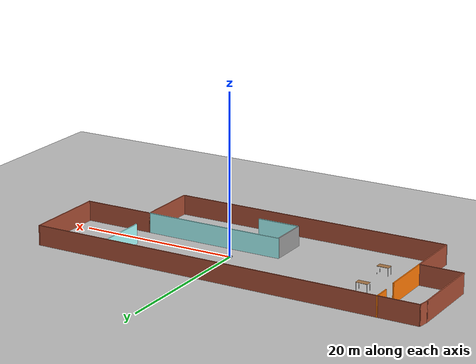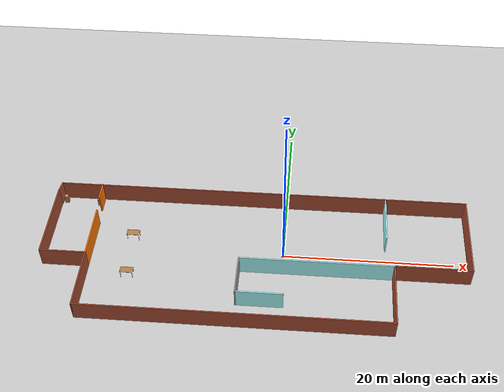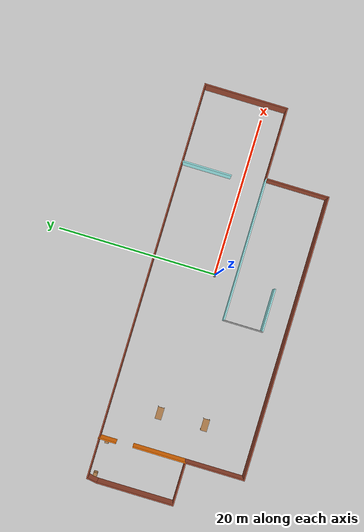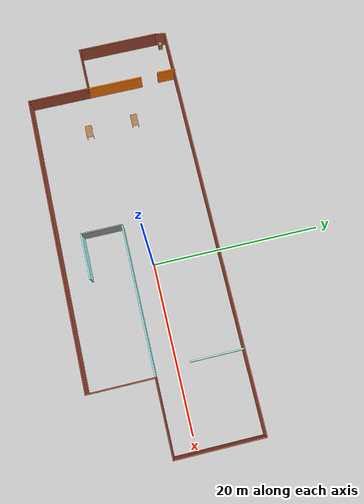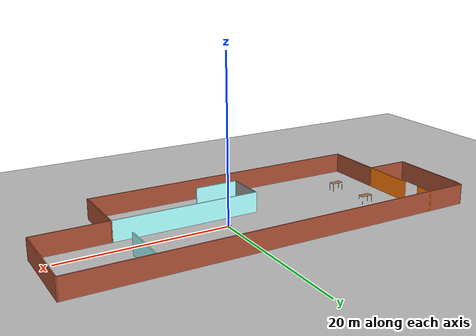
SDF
<sdf version="1.7">
 <world name="default">
  <light name="sun" type="directional">
   <pose>0 0 10 0 -0 0</pose>
   <diffuse>0.8 0.8 0.8 1</diffuse>
   <specular>0.2 0.2 0.2 1</specular>
   <attenuation>
    <range>1000</range>
    <constant>0.9</constant>
    <linear>0.01</linear>
    <quadratic>0.001</quadratic>
   </attenuation>
   <direction>-0.5 0.1 -0.9</direction>
   <spot><inner_angle>0</inner_angle><outer_angle>0</outer_angle><falloff>0</falloff></spot>
  </light>
  <model name="ground_plane">
   <static>1</static>
   <link name="link">
    <collision name="collision">
     <geometry><plane><normal>0 0 1</normal><size>100 100</size></plane></geometry>
     <surface>
      <contact><collide_bitmask>65535</collide_bitmask></contact>
      <friction><ode><mu>100</mu><mu2>50</mu2></ode></friction>
     </surface>
    </collision>
    <visual name="visual">
     <cast_shadows>0</cast_shadows>
     <geometry><plane><normal>0 0 1</normal><size>100 100</size></plane></geometry>
     <material>
      <script><uri>file://media/materials/scripts/gazebo.material</uri><name>Gazebo/Grey</name></script>
     </material>
    </visual>
   </link>
  </model>
  <gravity>0 0 -9.8</gravity>
  <magnetic_field>6e-06 2.3e-05 -4.2e-05</magnetic_field>
  <atmosphere type="adiabatic"/>
  <physics type="ode">
   <max_step_size>0.001</max_step_size>
   <real_time_factor>1</real_time_factor>
   <real_time_update_rate>1000</real_time_update_rate>
  </physics>
  <scene><ambient>0.4 0.4 0.4 1</ambient><background>0.7 0.7 0.7 1</background><shadows>1</shadows></scene>
  <spherical_coordinates>
   <surface_model>EARTH_WGS84</surface_model>
   <latitude_deg>0</latitude_deg>
   <longitude_deg>0</longitude_deg>
   <elevation>0</elevation>
   <heading_deg>0</heading_deg>
  </spherical_coordinates>
  <model name="myhouse">
   <pose>-3.2393 -1.27261 0 0 -0 0</pose>
   <link name="Wall_0">
    <collision name="Wall_0_Collision">
     <geometry><box><size>9.75 0.15 2.5</size></box></geometry>
     <pose>0 0 1.25 0 -0 0</pose>
    </collision>
    <visual name="Wall_0_Visual">
     <pose>0 0 1.25 0 -0 0</pose>
     <geometry><box><size>9.75 0.15 2.5</size></box></geometry>
     <material>
      <script><uri>file://media/materials/scripts/gazebo.material</uri><name>Gazebo/Bricks</name></script>
      <ambient>1 1 1 1</ambient>
     </material>
     <meta><layer>0</layer></meta>
    </visual>
    <pose>-24.8945 3.02404 0 0 -0 -1.5708</pose>
   </link>
   <link name="Wall_1">
    <collision name="Wall_1_Collision">
     <geometry><box><size>5.5 0.15 2.5</size></box></geometry>
     <pose>0 0 1.25 0 -0 0</pose>
    </collision>
    <visual name="Wall_1_Visual">
     <pose>0 0 1.25 0 -0 0</pose>
     <geometry><box><size>5.5 0.15 2.5</size></box></geometry>
     <material>
      <script><uri>file://media/materials/scripts/gazebo.material</uri><name>Gazebo/Bricks</name></script>
      <ambient>1 1 1 1</ambient>
     </material>
     <meta><layer>0</layer></meta>
    </visual>
    <pose>-22.2195 -1.77597 0 0 -0 0</pose>
   </link>
   <link name="Wall_11">
    <collision name="Wall_11_Collision">
     <geometry><box><size>6.75 0.15 2.5</size></box></geometry>
     <pose>0 0 1.25 0 -0 0</pose>
    </collision>
    <visual name="Wall_11_Visual">
     <pose>0 0 1.25 0 -0 0</pose>
     <geometry><box><size>6.75 0.15 2.5</size></box></geometry>
     <material>
      <script><uri>file://media/materials/scripts/gazebo.material</uri><name>Gazebo/Grey</name></script>
      <ambient>0.996078 0.47451 0.0196078 1</ambient>
     </material>
     <meta><layer>0</layer></meta>
    </visual>
    <pose>-19.5445 1.52404 0 0 -0 1.5708</pose>
   </link>
   <link name="Wall_14">
    <collision name="Wall_14_Collision">
     <geometry><box><size>2.25 0.15 2.5</size></box></geometry>
     <pose>0 0 1.25 0 -0 0</pose>
    </collision>
    <visual name="Wall_14_Visual">
     <pose>0 0 1.25 0 -0 0</pose>
     <geometry><box><size>2.25 0.15 2.5</size></box></geometry>
     <material>
      <script><uri>file://media/materials/scripts/gazebo.material</uri><name>Gazebo/Grey</name></script>
      <ambient>0.996078 0.47451 0.0196078 1</ambient>
     </material>
     <meta><layer>0</layer></meta>
    </visual>
    <pose>-19.6868 8.07597 0 0 -0 -1.5708</pose>
   </link>
   <link name="Wall_16">
    <collision name="Wall_16_Collision">
     <geometry><box><size>18 0.15 2.5</size></box></geometry>
     <pose>0 0 1.25 0 -0 0</pose>
    </collision>
    <visual name="Wall_16_Visual">
     <pose>0 0 1.25 0 -0 0</pose>
     <geometry><box><size>18 0.15 2.5</size></box></geometry>
     <material>
      <script><uri>file://media/materials/scripts/gazebo.material</uri><name>Gazebo/Grey</name></script>
      <ambient>0.666667 1 1 1</ambient>
     </material>
     <meta><layer>0</layer></meta>
    </visual>
    <pose>7.13045 -1.27597 0 0 -0 3.14159</pose>
   </link>
   <link name="Wall_17">
    <collision name="Wall_17_Collision">
     <geometry><box><size>5 0.15 2.5</size></box></geometry>
     <pose>0 0 1.25 0 -0 0</pose>
    </collision>
    <visual name="Wall_17_Visual">
     <pose>0 0 1.25 0 -0 0</pose>
     <geometry><box><size>5 0.15 2.5</size></box></geometry>
     <material>
      <script><uri>file://media/materials/scripts/gazebo.material</uri><name>Gazebo/Grey</name></script>
      <ambient>1 1 1 1</ambient>
     </material>
     <meta><layer>0</layer></meta>
    </visual>
    <pose>-1.79455 -3.70097 0 0 -0 -1.5708</pose>
   </link>
   <link name="Wall_18">
    <collision name="Wall_18_Collision">
     <geometry><box><size>5.5 0.15 2.5</size></box></geometry>
     <pose>0 0 1.25 0 -0 0</pose>
    </collision>
    <visual name="Wall_18_Visual">
     <pose>0 0 1.25 0 -0 0</pose>
     <geometry><box><size>5.5 0.15 2.5</size></box></geometry>
     <material>
      <script><uri>file://media/materials/scripts/gazebo.material</uri><name>Gazebo/Grey</name></script>
      <ambient>0.666667 1 1 1</ambient>
     </material>
     <meta><layer>0</layer></meta>
    </visual>
    <pose>0.880453 -6.12596 0 0 -0 0</pose>
   </link>
   <link name="Wall_2">
    <collision name="Wall_2_Collision">
     <geometry><box><size>7.5 0.15 2.5</size></box></geometry>
     <pose>0 0 1.25 0 -0 0</pose>
    </collision>
    <visual name="Wall_2_Visual">
     <pose>0 0 1.25 0 -0 0</pose>
     <geometry><box><size>7.5 0.15 2.5</size></box></geometry>
     <material>
      <script><uri>file://media/materials/scripts/gazebo.material</uri><name>Gazebo/Bricks</name></script>
      <ambient>1 1 1 1</ambient>
     </material>
     <meta><layer>0</layer></meta>
    </visual>
    <pose>-19.5445 -5.45097 0 0 -0 -1.5708</pose>
   </link>
   <link name="Wall_20">
    <collision name="Wall_20_Collision">
     <geometry><box><size>6.25 0.15 2.5</size></box></geometry>
     <pose>0 0 1.25 0 -0 0</pose>
    </collision>
    <visual name="Wall_20_Visual">
     <pose>0 0 1.25 0 -0 0</pose>
     <geometry><box><size>6.25 0.15 2.5</size></box></geometry>
     <material>
      <script><uri>file://media/materials/scripts/gazebo.material</uri><name>Gazebo/Grey</name></script>
      <ambient>0.666667 1 1 1</ambient>
     </material>
     <meta><layer>0</layer></meta>
    </visual>
    <pose>15.2212 5.99459 0 0 -0 -1.5708</pose>
   </link>
   <link name="Wall_3">
    <collision name="Wall_3_Collision">
     <geometry><box><size>35.75 0.15 2.5</size></box></geometry>
     <pose>0 0 1.25 0 -0 0</pose>
    </collision>
    <visual name="Wall_3_Visual">
     <pose>0 0 1.25 0 -0 0</pose>
     <geometry><box><size>35.75 0.15 2.5</size></box></geometry>
     <material>
      <script><uri>file://media/materials/scripts/gazebo.material</uri><name>Gazebo/Bricks</name></script>
      <ambient>1 1 1 1</ambient>
     </material>
     <meta><layer>0</layer></meta>
    </visual>
    <pose>-1.74455 -9.12597 0 0 -0 0</pose>
   </link>
   <link name="Wall_5">
    <collision name="Wall_5_Collision">
     <geometry><box><size>8 0.15 2.5</size></box></geometry>
     <pose>0 0 1.25 0 -0 0</pose>
    </collision>
    <visual name="Wall_5_Visual">
     <pose>0 0 1.25 0 -0 0</pose>
     <geometry><box><size>8 0.15 2.5</size></box></geometry>
     <material>
      <script><uri>file://media/materials/scripts/gazebo.material</uri><name>Gazebo/Bricks</name></script>
      <ambient>1 1 1 1</ambient>
     </material>
     <meta><layer>0</layer></meta>
    </visual>
    <pose>16.0555 -5.20097 0 0 -0 1.5708</pose>
   </link>
   <link name="Wall_6">
    <collision name="Wall_6_Collision">
     <geometry><box><size>9 0.15 2.5</size></box></geometry>
     <pose>0 0 1.25 0 -0 0</pose>
    </collision>
    <visual name="Wall_6_Visual">
     <pose>0 0 1.25 0 -0 0</pose>
     <geometry><box><size>9 0.15 2.5</size></box></geometry>
     <material>
      <script><uri>file://media/materials/scripts/gazebo.material</uri><name>Gazebo/Bricks</name></script>
      <ambient>1 1 1 1</ambient>
     </material>
     <meta><layer>0</layer></meta>
    </visual>
    <pose>20.4805 -1.27597 0 0 -0 0</pose>
   </link>
   <link name="Wall_7">
    <collision name="Wall_7_Collision">
     <geometry><box><size>10.5 0.15 2.5</size></box></geometry>
     <pose>0 0 1.25 0 -0 0</pose>
    </collision>
    <visual name="Wall_7_Visual">
     <pose>0 0 1.25 0 -0 0</pose>
     <geometry><box><size>10.5 0.15 2.5</size></box></geometry>
     <material>
      <script><uri>file://media/materials/scripts/gazebo.material</uri><name>Gazebo/Bricks</name></script>
      <ambient>1 1 1 1</ambient>
     </material>
     <meta><layer>0</layer></meta>
    </visual>
    <pose>24.9055 3.89904 0 0 -0 1.5708</pose>
   </link>
   <link name="Wall_8">
    <collision name="Wall_8_Collision">
     <geometry><box><size>49.75 0.15 2.5</size></box></geometry>
     <pose>0 0 1.25 0 -0 0</pose>
    </collision>
    <visual name="Wall_8_Visual">
     <pose>0 0 1.25 0 -0 0</pose>
     <geometry><box><size>49.75 0.15 2.5</size></box></geometry>
     <material>
      <script><uri>file://media/materials/scripts/gazebo.material</uri><name>Gazebo/Bricks</name></script>
      <ambient>1 1 1 1</ambient>
     </material>
     <meta><layer>0</layer></meta>
    </visual>
    <pose>0.105453 9.07404 0 0 -0 3.14159</pose>
   </link>
   <link name="Wall_9">
    <collision name="Wall_9_Collision">
     <geometry><box><size>1.4159 0.15 2.5</size></box></geometry>
     <pose>0 0 1.25 0 -0 0</pose>
    </collision>
    <visual name="Wall_9_Visual">
     <pose>0 0 1.25 0 -0 0</pose>
     <geometry><box><size>1.4159 0.15 2.5</size></box></geometry>
     <material>
      <script><uri>file://media/materials/scripts/gazebo.material</uri><name>Gazebo/Bricks</name></script>
      <ambient>1 1 1 1</ambient>
     </material>
     <meta><layer>0</layer></meta>
    </visual>
    <pose>-24.7945 8.44904 0 0 -0 -1.72945</pose>
   </link>
   <static>1</static>
  </model>
  <model name="cabinet">
   <static>1</static>
   <link name="cabinet_bottom_plate">
    <inertial>
     <pose>0 0 -1 0 -0 0</pose>
     <inertia><ixx>2.05</ixx><ixy>0</ixy><ixz>0</ixz><iyy>2.05</iyy><iyz>0</iyz><izz>2.05</izz></inertia>
     <mass>25</mass>
    </inertial>
    <collision name="cabinet_bottom_plate_geom">
     <pose>0 0 0.01 0 -0 0</pose>
     <geometry><box><size>0.45 0.45 0.02</size></box></geometry>
    </collision>
    <visual name="cabinet_bottom_plate_geom_visual">
     <pose>0 0 0.01 0 -0 0</pose>
     <geometry><box><size>0.45 0.45 0.02</size></box></geometry>
     <material>
      <script><uri>file://media/materials/scripts/gazebo.material</uri><name>Gazebo/Wood</name></script>
     </material>
    </visual>
    <collision name="cabinet_bottom_plate_geom_cabinet_back_plate">
     <pose>0.235 0 0.51 0 -0 0</pose>
     <geometry><box><size>0.02 0.45 1.02</size></box></geometry>
    </collision>
    <visual name="cabinet_bottom_plate_geom_cabinet_back_plate_visual">
     <pose>0.235 0 0.51 0 -0 0</pose>
     <geometry><box><size>0.02 0.45 1.02</size></box></geometry>
     <material>
      <script><uri>file://media/materials/scripts/gazebo.material</uri><name>Gazebo/Wood</name></script>
     </material>
    </visual>
    <collision name="cabinet_bottom_plate_geom_cabinet_left_plate">
     <pose>0 0.235 0.51 0 -0 0</pose>
     <geometry><box><size>0.45 0.02 1.02</size></box></geometry>
    </collision>
    <visual name="cabinet_bottom_plate_geom_cabinet_left_plate_visual">
     <pose>0 0.235 0.51 0 -0 0</pose>
     <geometry><box><size>0.45 0.02 1.02</size></box></geometry>
     <material>
      <script><uri>file://media/materials/scripts/gazebo.material</uri><name>Gazebo/Wood</name></script>
     </material>
    </visual>
    <collision name="cabinet_bottom_plate_geom_cabinet_middle_plate">
     <pose>0 0 0.51 0 -0 0</pose>
     <geometry><box><size>0.45 0.45 0.02</size></box></geometry>
    </collision>
    <visual name="cabinet_bottom_plate_geom_cabinet_middle_plate_visual">
     <pose>0 0 0.51 0 -0 0</pose>
     <geometry><box><size>0.45 0.45 0.02</size></box></geometry>
     <material>
      <script><uri>file://media/materials/scripts/gazebo.material</uri><name>Gazebo/Wood</name></script>
     </material>
    </visual>
    <collision name="cabinet_bottom_plate_geom_cabinet_right_plate">
     <pose>0 -0.235 0.51 0 -0 0</pose>
     <geometry><box><size>0.45 0.02 1.02</size></box></geometry>
    </collision>
    <visual name="cabinet_bottom_plate_geom_cabinet_right_plate_visual">
     <pose>0 -0.235 0.51 0 -0 0</pose>
     <geometry><box><size>0.45 0.02 1.02</size></box></geometry>
     <material>
      <script><uri>file://media/materials/scripts/gazebo.material</uri><name>Gazebo/Wood</name></script>
     </material>
    </visual>
    <collision name="cabinet_bottom_plate_geom_cabinet_top_plate">
     <pose>0 0 1.01 0 -0 0</pose>
     <geometry><box><size>0.45 0.45 0.02</size></box></geometry>
    </collision>
    <visual name="cabinet_bottom_plate_geom_cabinet_top_plate_visual">
     <pose>0 0 1.01 0 -0 0</pose>
     <geometry><box><size>0.45 0.45 0.02</size></box></geometry>
     <material>
      <script><uri>file://media/materials/scripts/gazebo.material</uri><name>Gazebo/Wood</name></script>
     </material>
    </visual>
   </link>
   <pose>-27.5533 7.04256 0 0 -0 0</pose>
  </model>
  <model name="cabinet_0">
   <static>1</static>
   <link name="cabinet_bottom_plate">
    <inertial>
     <pose>0 0 -1 0 -0 0</pose>
     <inertia><ixx>2.05</ixx><ixy>0</ixy><ixz>0</ixz><iyy>2.05</iyy><iyz>0</iyz><izz>2.05</izz></inertia>
     <mass>25</mass>
    </inertial>
    <collision name="cabinet_bottom_plate_geom">
     <pose>0 0 0.01 0 -0 0</pose>
     <geometry><box><size>0.45 0.45 0.02</size></box></geometry>
    </collision>
    <visual name="cabinet_bottom_plate_geom_visual">
     <pose>0 0 0.01 0 -0 0</pose>
     <geometry><box><size>0.45 0.45 0.02</size></box></geometry>
     <material>
      <script><uri>file://media/materials/scripts/gazebo.material</uri><name>Gazebo/Wood</name></script>
     </material>
    </visual>
    <collision name="cabinet_bottom_plate_geom_cabinet_back_plate">
     <pose>0.235 0 0.51 0 -0 0</pose>
     <geometry><box><size>0.02 0.45 1.02</size></box></geometry>
    </collision>
    <visual name="cabinet_bottom_plate_geom_cabinet_back_plate_visual">
     <pose>0.235 0 0.51 0 -0 0</pose>
     <geometry><box><size>0.02 0.45 1.02</size></box></geometry>
     <material>
      <script><uri>file://media/materials/scripts/gazebo.material</uri><name>Gazebo/Wood</name></script>
     </material>
    </visual>
    <collision name="cabinet_bottom_plate_geom_cabinet_left_plate">
     <pose>0 0.235 0.51 0 -0 0</pose>
     <geometry><box><size>0.45 0.02 1.02</size></box></geometry>
    </collision>
    <visual name="cabinet_bottom_plate_geom_cabinet_left_plate_visual">
     <pose>0 0.235 0.51 0 -0 0</pose>
     <geometry><box><size>0.45 0.02 1.02</size></box></geometry>
     <material>
      <script><uri>file://media/materials/scripts/gazebo.material</uri><name>Gazebo/Wood</name></script>
     </material>
    </visual>
    <collision name="cabinet_bottom_plate_geom_cabinet_middle_plate">
     <pose>0 0 0.51 0 -0 0</pose>
     <geometry><box><size>0.45 0.45 0.02</size></box></geometry>
    </collision>
    <visual name="cabinet_bottom_plate_geom_cabinet_middle_plate_visual">
     <pose>0 0 0.51 0 -0 0</pose>
     <geometry><box><size>0.45 0.45 0.02</size></box></geometry>
     <material>
      <script><uri>file://media/materials/scripts/gazebo.material</uri><name>Gazebo/Wood</name></script>
     </material>
    </visual>
    <collision name="cabinet_bottom_plate_geom_cabinet_right_plate">
     <pose>0 -0.235 0.51 0 -0 0</pose>
     <geometry><box><size>0.45 0.02 1.02</size></box></geometry>
    </collision>
    <visual name="cabinet_bottom_plate_geom_cabinet_right_plate_visual">
     <pose>0 -0.235 0.51 0 -0 0</pose>
     <geometry><box><size>0.45 0.02 1.02</size></box></geometry>
     <material>
      <script><uri>file://media/materials/scripts/gazebo.material</uri><name>Gazebo/Wood</name></script>
     </material>
    </visual>
    <collision name="cabinet_bottom_plate_geom_cabinet_top_plate">
     <pose>0 0 1.01 0 -0 0</pose>
     <geometry><box><size>0.45 0.45 0.02</size></box></geometry>
    </collision>
    <visual name="cabinet_bottom_plate_geom_cabinet_top_plate_visual">
     <pose>0 0 1.01 0 -0 0</pose>
     <geometry><box><size>0.45 0.45 0.02</size></box></geometry>
     <material>
      <script><uri>file://media/materials/scripts/gazebo.material</uri><name>Gazebo/Wood</name></script>
     </material>
    </visual>
   </link>
   <pose>-23.3077 6.83005 0 0 -0 0</pose>
  </model>
  <model name="table">
   <static>1</static>
   <link name="link">
    <collision name="surface">
     <pose>0 0 1 0 -0 0</pose>
     <geometry><box><size>1.5 0.8 0.03</size></box></geometry>
     <surface><friction><ode><mu>0.6</mu><mu2>0.6</mu2></ode></friction></surface>
    </collision>
    <visual name="visual1">
     <pose>0 0 1 0 -0 0</pose>
     <geometry><box><size>1.5 0.8 0.03</size></box></geometry>
     <material>
      <script><uri>file://media/materials/scripts/gazebo.material</uri><name>Gazebo/Wood</name></script>
     </material>
    </visual>
    <collision name="front_left_leg">
     <pose>0.68 0.38 0.5 0 -0 0</pose>
     <geometry><cylinder><radius>0.02</radius><length>1</length></cylinder></geometry>
    </collision>
    <visual name="front_left_leg">
     <pose>0.68 0.38 0.5 0 -0 0</pose>
     <geometry><cylinder><radius>0.02</radius><length>1</length></cylinder></geometry>
     <material>
      <script><uri>file://media/materials/scripts/gazebo.material</uri><name>Gazebo/Grey</name></script>
     </material>
    </visual>
    <collision name="front_right_leg">
     <pose>0.68 -0.38 0.5 0 -0 0</pose>
     <geometry><cylinder><radius>0.02</radius><length>1</length></cylinder></geometry>
    </collision>
    <visual name="front_right_leg">
     <pose>0.68 -0.38 0.5 0 -0 0</pose>
     <geometry><cylinder><radius>0.02</radius><length>1</length></cylinder></geometry>
     <material>
      <script><uri>file://media/materials/scripts/gazebo.material</uri><name>Gazebo/Grey</name></script>
     </material>
    </visual>
    <collision name="back_right_leg">
     <pose>-0.68 -0.38 0.5 0 -0 0</pose>
     <geometry><cylinder><radius>0.02</radius><length>1</length></cylinder></geometry>
    </collision>
    <visual name="back_right_leg">
     <pose>-0.68 -0.38 0.5 0 -0 0</pose>
     <geometry><cylinder><radius>0.02</radius><length>1</length></cylinder></geometry>
     <material>
      <script><uri>file://media/materials/scripts/gazebo.material</uri><name>Gazebo/Grey</name></script>
     </material>
    </visual>
    <collision name="back_left_leg">
     <pose>-0.68 0.38 0.5 0 -0 0</pose>
     <geometry><cylinder><radius>0.02</radius><length>1</length></cylinder></geometry>
    </collision>
    <visual name="back_left_leg">
     <pose>-0.68 0.38 0.5 0 -0 0</pose>
     <geometry><cylinder><radius>0.02</radius><length>1</length></cylinder></geometry>
     <material>
      <script><uri>file://media/materials/scripts/gazebo.material</uri><name>Gazebo/Grey</name></script>
     </material>
    </visual>
   </link>
   <pose>-18.1522 1.64342 0 0 -0 0</pose>
  </model>
  <model name="table_0">
   <static>1</static>
   <link name="link">
    <collision name="surface">
     <pose>0 0 1 0 -0 0</pose>
     <geometry><box><size>1.5 0.8 0.03</size></box></geometry>
     <surface><friction><ode><mu>0.6</mu><mu2>0.6</mu2></ode></friction></surface>
    </collision>
    <visual name="visual1">
     <pose>0 0 1 0 -0 0</pose>
     <geometry><box><size>1.5 0.8 0.03</size></box></geometry>
     <material>
      <script><uri>file://media/materials/scripts/gazebo.material</uri><name>Gazebo/Wood</name></script>
     </material>
    </visual>
    <collision name="front_left_leg">
     <pose>0.68 0.38 0.5 0 -0 0</pose>
     <geometry><cylinder><radius>0.02</radius><length>1</length></cylinder></geometry>
    </collision>
    <visual name="front_left_leg">
     <pose>0.68 0.38 0.5 0 -0 0</pose>
     <geometry><cylinder><radius>0.02</radius><length>1</length></cylinder></geometry>
     <material>
      <script><uri>file://media/materials/scripts/gazebo.material</uri><name>Gazebo/Grey</name></script>
     </material>
    </visual>
    <collision name="front_right_leg">
     <pose>0.68 -0.38 0.5 0 -0 0</pose>
     <geometry><cylinder><radius>0.02</radius><length>1</length></cylinder></geometry>
    </collision>
    <visual name="front_right_leg">
     <pose>0.68 -0.38 0.5 0 -0 0</pose>
     <geometry><cylinder><radius>0.02</radius><length>1</length></cylinder></geometry>
     <material>
      <script><uri>file://media/materials/scripts/gazebo.material</uri><name>Gazebo/Grey</name></script>
     </material>
    </visual>
    <collision name="back_right_leg">
     <pose>-0.68 -0.38 0.5 0 -0 0</pose>
     <geometry><cylinder><radius>0.02</radius><length>1</length></cylinder></geometry>
    </collision>
    <visual name="back_right_leg">
     <pose>-0.68 -0.38 0.5 0 -0 0</pose>
     <geometry><cylinder><radius>0.02</radius><length>1</length></cylinder></geometry>
     <material>
      <script><uri>file://media/materials/scripts/gazebo.material</uri><name>Gazebo/Grey</name></script>
     </material>
    </visual>
    <collision name="back_left_leg">
     <pose>-0.68 0.38 0.5 0 -0 0</pose>
     <geometry><cylinder><radius>0.02</radius><length>1</length></cylinder></geometry>
    </collision>
    <visual name="back_left_leg">
     <pose>-0.68 0.38 0.5 0 -0 0</pose>
     <geometry><cylinder><radius>0.02</radius><length>1</length></cylinder></geometry>
     <material>
      <script><uri>file://media/materials/scripts/gazebo.material</uri><name>Gazebo/Grey</name></script>
     </material>
    </visual>
   </link>
   <pose>-17.9416 -4.09257 0 0 -0 0</pose>
  </model>
  <audio><device>default</device></audio>
  <model name="rusty">
   <link name="base_link">
    <inertial>
     <pose>0.000187 1.7e-05 0.134183 0 -0 0</pose>
     <mass>40.0471</mass>
     <inertia>
      <ixx>0.396803</ixx>
      <ixy>-0.000160667</ixy>
      <ixz>1.07487e-05</ixz>
      <iyy>0.900506</iyy>
      <iyz>3.01439e-06</iyz>
      <izz>1.12391</izz>
     </inertia>
    </inertial>
    <collision name="base_link_collision">
     <geometry>
      <mesh>
       <scale>0.001 0.001 0.001</scale>
       <uri>file:///home/siddarth/ros2ws/install/rusty_description/share/rusty_description/meshes/base_link.stl</uri>
      </mesh>
     </geometry>
     <surface><friction><ode><mu>0.2</mu><mu2>0.2</mu2></ode></friction></surface>
    </collision>
    <collision name="base_link_fixed_joint_lump__Holder_1_collision_1">
     <geometry>
      <mesh>
       <scale>0.001 0.001 0.001</scale>
       <uri>file:///home/siddarth/ros2ws/install/rusty_description/share/rusty_description/meshes/Holder_1.stl</uri>
      </mesh>
     </geometry>
     <surface><friction><ode><mu>0.2</mu><mu2>0.2</mu2></ode></friction></surface>
    </collision>
    <collision name="base_link_fixed_joint_lump__Camera_1_collision_2">
     <geometry>
      <mesh>
       <scale>0.001 0.001 0.001</scale>
       <uri>file:///home/siddarth/ros2ws/install/rusty_description/share/rusty_description/meshes/Camera_1.stl</uri>
      </mesh>
     </geometry>
     <surface><friction><ode><mu>0.2</mu><mu2>0.2</mu2></ode></friction></surface>
    </collision>
    <collision name="base_link_fixed_joint_lump__Lidar_1_collision_3">
     <geometry>
      <mesh>
       <scale>0.001 0.001 0.001</scale>
       <uri>file:///home/siddarth/ros2ws/install/rusty_description/share/rusty_description/meshes/Lidar_1.stl</uri>
      </mesh>
     </geometry>
     <surface><friction><ode><mu>0.2</mu><mu2>0.2</mu2></ode></friction></surface>
    </collision>
    <visual name="base_link_visual">
     <geometry>
      <mesh>
       <scale>0.001 0.001 0.001</scale>
       <uri>file:///home/siddarth/ros2ws/install/rusty_description/share/rusty_description/meshes/base_link.stl</uri>
      </mesh>
     </geometry>
     <material>
      <script><name>Gazebo/Silver</name><uri>file://media/materials/scripts/gazebo.material</uri></script>
     </material>
    </visual>
    <visual name="base_link_fixed_joint_lump__Holder_1_visual_1">
     <geometry>
      <mesh>
       <scale>0.001 0.001 0.001</scale>
       <uri>file:///home/siddarth/ros2ws/install/rusty_description/share/rusty_description/meshes/Holder_1.stl</uri>
      </mesh>
     </geometry>
     <material>
      <script><name>Gazebo/Black</name><uri>file://media/materials/scripts/gazebo.material</uri></script>
     </material>
    </visual>
    <visual name="base_link_fixed_joint_lump__Camera_1_visual_2">
     <geometry>
      <mesh>
       <scale>0.001 0.001 0.001</scale>
       <uri>file:///home/siddarth/ros2ws/install/rusty_description/share/rusty_description/meshes/Camera_1.stl</uri>
      </mesh>
     </geometry>
     <material>
      <script><name>Gazebo/Red</name><uri>file://media/materials/scripts/gazebo.material</uri></script>
     </material>
    </visual>
    <visual name="base_link_fixed_joint_lump__Lidar_1_visual_3">
     <geometry>
      <mesh>
       <scale>0.001 0.001 0.001</scale>
       <uri>file:///home/siddarth/ros2ws/install/rusty_description/share/rusty_description/meshes/Lidar_1.stl</uri>
      </mesh>
     </geometry>
     <material>
      <script><name>Gazebo/Blue</name><uri>file://media/materials/scripts/gazebo.material</uri></script>
     </material>
    </visual>
    <self_collide>1</self_collide>
    <self_collide>1</self_collide>
    <self_collide>1</self_collide>
    <sensor name="camera" type="camera">
     <update_rate>30</update_rate>
     <camera name="head">
      <horizontal_fov>1.39626</horizontal_fov>
      <image><width>640</width><height>480</height><format>R8G8B8</format></image>
      <clip><near>0.02</near><far>300</far></clip>
      <noise><type>gaussian</type><mean>0</mean><stddev>0.007</stddev></noise>
     </camera>
     <plugin name="camera_controller" filename="libgazebo_ros_camera.so">
      <alwaysOn>1</alwaysOn>
      <updateRate>0.0</updateRate>
      <cameraName>camera</cameraName>
      <imageTopicName>image_raw</imageTopicName>
      <cameraInfoTopicName>camera_info</cameraInfoTopicName>
      <frameName>camera</frameName>
      <hackBaseline>0.07</hackBaseline>
      <distortionK1>0.0</distortionK1>
      <distortionK2>0.0</distortionK2>
      <distortionK3>0.0</distortionK3>
      <distortionT1>0.0</distortionT1>
      <distortionT2>0.0</distortionT2>
     </plugin>
     <pose>0.222588 0.012099 0.15 0 -0 0</pose>
    </sensor>
    <self_collide>1</self_collide>
    <sensor name="ydlidar" type="ray">
     <always_on>1</always_on>
     <visualize>0</visualize>
     <update_rate>10</update_rate>
     <ray>
      <scan>
       <horizontal>
        <samples>720</samples>
        <resolution>1</resolution>
        <min_angle>-1.57</min_angle>
        <max_angle>1.57</max_angle>
       </horizontal>
       <vertical><samples>1</samples><min_angle>0</min_angle><max_angle>0</max_angle></vertical>
      </scan>
      <range><min>0.05</min><max>20</max><resolution>0.015</resolution></range>
      <noise><type>gaussian</type><mean>0</mean><stddev>0.01</stddev></noise>
     </ray>
     <plugin name="scan" filename="libgazebo_ros_ray_sensor.so">
      <ros><remapping>~/out:=scan</remapping></ros>
      <output_type>sensor_msgs/LaserScan</output_type>
      <frame_name>Lidar_1</frame_name>
     </plugin>
     <pose>0.235 0 0.135 0 -0 0</pose>
    </sensor>
   </link>
   <joint name="LW1" type="revolute">
    <pose relative_to="base_link">0.095 0.16 0.05 0 -0 0</pose>
    <parent>base_link</parent>
    <child>LW1_1</child>
    <axis>
     <xyz>0 1 0</xyz>
     <limit><lower>-1e+16</lower><upper>1e+16</upper></limit>
     <dynamics><spring_reference>0</spring_reference><spring_stiffness>0</spring_stiffness></dynamics>
    </axis>
   </joint>
   <link name="LW1_1">
    <pose relative_to="LW1">0 0 0 0 -0 0</pose>
    <inertial>
     <pose>0 0.0125 0 0 -0 0</pose>
     <mass>0.182605</mass>
     <inertia>
      <ixx>0.000124</ixx>
      <ixy>0</ixy>
      <ixz>0</ixz>
      <iyy>0.000228</iyy>
      <iyz>0</iyz>
      <izz>0.000124</izz>
     </inertia>
    </inertial>
    <collision name="LW1_1_collision">
     <pose>-0.095 -0.16 -0.05 0 -0 0</pose>
     <geometry>
      <mesh>
       <scale>0.001 0.001 0.001</scale>
       <uri>file:///home/siddarth/ros2ws/install/rusty_description/share/rusty_description/meshes/LW1_1.stl</uri>
      </mesh>
     </geometry>
     <surface><friction><ode><mu>0.2</mu><mu2>0.2</mu2></ode></friction></surface>
    </collision>
    <visual name="LW1_1_visual">
     <pose>-0.095 -0.16 -0.05 0 -0 0</pose>
     <geometry>
      <mesh>
       <scale>0.001 0.001 0.001</scale>
       <uri>file:///home/siddarth/ros2ws/install/rusty_description/share/rusty_description/meshes/LW1_1.stl</uri>
      </mesh>
     </geometry>
     <material>
      <script><name>Gazebo/Black</name><uri>file://media/materials/scripts/gazebo.material</uri></script>
     </material>
    </visual>
    <self_collide>1</self_collide>
   </link>
   <joint name="LW2" type="revolute">
    <pose relative_to="base_link">-0.095 0.16 0.05 0 -0 0</pose>
    <parent>base_link</parent>
    <child>LW2_1</child>
    <axis>
     <xyz>0 1 0</xyz>
     <limit><lower>-1e+16</lower><upper>1e+16</upper></limit>
     <dynamics><spring_reference>0</spring_reference><spring_stiffness>0</spring_stiffness></dynamics>
    </axis>
   </joint>
   <link name="LW2_1">
    <pose relative_to="LW2">0 0 0 0 -0 0</pose>
    <inertial>
     <pose>0 0.0125 0 0 -0 0</pose>
     <mass>0.182605</mass>
     <inertia>
      <ixx>0.000124</ixx>
      <ixy>0</ixy>
      <ixz>0</ixz>
      <iyy>0.000228</iyy>
      <iyz>0</iyz>
      <izz>0.000124</izz>
     </inertia>
    </inertial>
    <collision name="LW2_1_collision">
     <pose>0.095 -0.16 -0.05 0 -0 0</pose>
     <geometry>
      <mesh>
       <scale>0.001 0.001 0.001</scale>
       <uri>file:///home/siddarth/ros2ws/install/rusty_description/share/rusty_description/meshes/LW2_1.stl</uri>
      </mesh>
     </geometry>
     <surface><friction><ode><mu>0.2</mu><mu2>0.2</mu2></ode></friction></surface>
    </collision>
    <visual name="LW2_1_visual">
     <pose>0.095 -0.16 -0.05 0 -0 0</pose>
     <geometry>
      <mesh>
       <scale>0.001 0.001 0.001</scale>
       <uri>file:///home/siddarth/ros2ws/install/rusty_description/share/rusty_description/meshes/LW2_1.stl</uri>
      </mesh>
     </geometry>
     <material>
      <script><name>Gazebo/Black</name><uri>file://media/materials/scripts/gazebo.material</uri></script>
     </material>
    </visual>
    <self_collide>1</self_collide>
   </link>
   <joint name="RW1" type="revolute">
    <pose relative_to="base_link">0.095 -0.16 0.05 0 -0 0</pose>
    <parent>base_link</parent>
    <child>RW1_1</child>
    <axis>
     <xyz>0 1 0</xyz>
     <limit><lower>-1e+16</lower><upper>1e+16</upper></limit>
     <dynamics><spring_reference>0</spring_reference><spring_stiffness>0</spring_stiffness></dynamics>
    </axis>
   </joint>
   <link name="RW1_1">
    <pose relative_to="RW1">0 0 0 0 -0 0</pose>
    <inertial>
     <pose>-0 -0.0125 0 0 -0 0</pose>
     <mass>0.182605</mass>
     <inertia>
      <ixx>0.000124</ixx>
      <ixy>0</ixy>
      <ixz>0</ixz>
      <iyy>0.000228</iyy>
      <iyz>0</iyz>
      <izz>0.000124</izz>
     </inertia>
    </inertial>
    <collision name="RW1_1_collision">
     <pose>-0.095 0.16 -0.05 0 -0 0</pose>
     <geometry>
      <mesh>
       <scale>0.001 0.001 0.001</scale>
       <uri>file:///home/siddarth/ros2ws/install/rusty_description/share/rusty_description/meshes/RW1_1.stl</uri>
      </mesh>
     </geometry>
     <surface><friction><ode><mu>0.2</mu><mu2>0.2</mu2></ode></friction></surface>
    </collision>
    <visual name="RW1_1_visual">
     <pose>-0.095 0.16 -0.05 0 -0 0</pose>
     <geometry>
      <mesh>
       <scale>0.001 0.001 0.001</scale>
       <uri>file:///home/siddarth/ros2ws/install/rusty_description/share/rusty_description/meshes/RW1_1.stl</uri>
      </mesh>
     </geometry>
     <material>
      <script><name>Gazebo/Black</name><uri>file://media/materials/scripts/gazebo.material</uri></script>
     </material>
    </visual>
    <self_collide>1</self_collide>
   </link>
   <joint name="RW2" type="revolute">
    <pose relative_to="base_link">-0.095 -0.16 0.05 0 -0 0</pose>
    <parent>base_link</parent>
    <child>RW2_1</child>
    <axis>
     <xyz>0 1 0</xyz>
     <limit><lower>-1e+16</lower><upper>1e+16</upper></limit>
     <dynamics><spring_reference>0</spring_reference><spring_stiffness>0</spring_stiffness></dynamics>
    </axis>
   </joint>
   <link name="RW2_1">
    <pose relative_to="RW2">0 0 0 0 -0 0</pose>
    <inertial>
     <pose>0 -0.0125 0 0 -0 0</pose>
     <mass>0.182605</mass>
     <inertia>
      <ixx>0.000124</ixx>
      <ixy>0</ixy>
      <ixz>0</ixz>
      <iyy>0.000228</iyy>
      <iyz>0</iyz>
      <izz>0.000124</izz>
     </inertia>
    </inertial>
    <collision name="RW2_1_collision">
     <pose>0.095 0.16 -0.05 0 -0 0</pose>
     <geometry>
      <mesh>
       <scale>0.001 0.001 0.001</scale>
       <uri>file:///home/siddarth/ros2ws/install/rusty_description/share/rusty_description/meshes/RW2_1.stl</uri>
      </mesh>
     </geometry>
     <surface><friction><ode><mu>0.2</mu><mu2>0.2</mu2></ode></friction></surface>
    </collision>
    <visual name="RW2_1_visual">
     <pose>0.095 0.16 -0.05 0 -0 0</pose>
     <geometry>
      <mesh>
       <scale>0.001 0.001 0.001</scale>
       <uri>file:///home/siddarth/ros2ws/install/rusty_description/share/rusty_description/meshes/RW2_1.stl</uri>
      </mesh>
     </geometry>
     <material>
      <script><name>Gazebo/Black</name><uri>file://media/materials/scripts/gazebo.material</uri></script>
     </material>
    </visual>
    <self_collide>1</self_collide>
   </link>
   <plugin name="control" filename="libgazebo_ros_control.so"/>
   <static>0</static>
   <plugin name="skid_steer_drive" filename="libgazebo_ros_diff_drive.so">
    <ros><remapping>cmd_vel:=cmd_vel</remapping><remapping>odom:=odom</remapping></ros>
    <update_rate>500</update_rate>
    <num_wheel_pairs>2</num_wheel_pairs>
    <left_joint>LW1</left_joint>
    <right_joint>RW1</right_joint>
    <left_joint>LW2</left_joint>
    <right_joint>RW2</right_joint>
    <wheel_separation>0.300</wheel_separation>
    <wheel_separation>0.300</wheel_separation>
    <wheel_diameter>0.100</wheel_diameter>
    <wheel_diameter>0.100</wheel_diameter>
    <max_wheel_torque>20</max_wheel_torque>
    <max_wheel_acceleration>1.0</max_wheel_acceleration>
    <publish_odom>1</publish_odom>
    <publish_odom_tf>1</publish_odom_tf>
    <publish_wheel_tf>1</publish_wheel_tf>
    <odometry_frame>odom</odometry_frame>
    <robot_base_frame>base_link</robot_base_frame>
   </plugin>
   <pose>-0.000147 0.014124 -8.9e-05 2e-06 7e-06 0.036842</pose>
  </model>
 </world>
</sdf>
